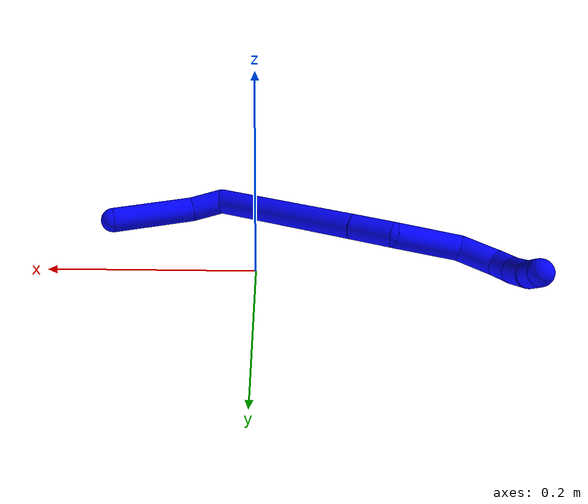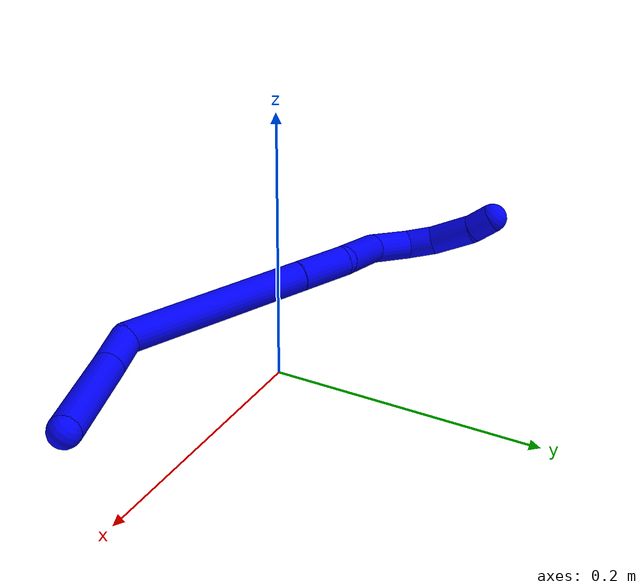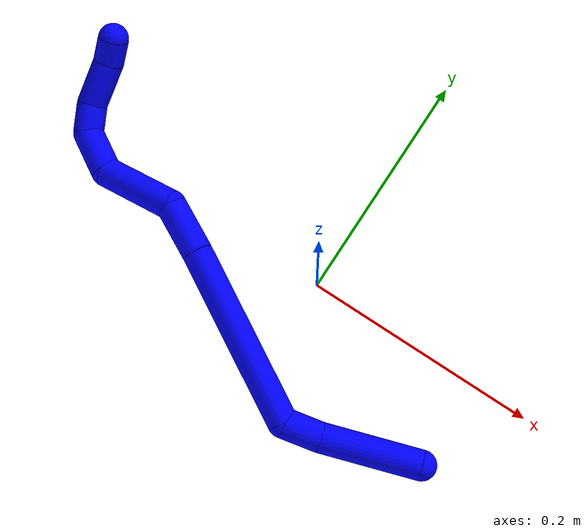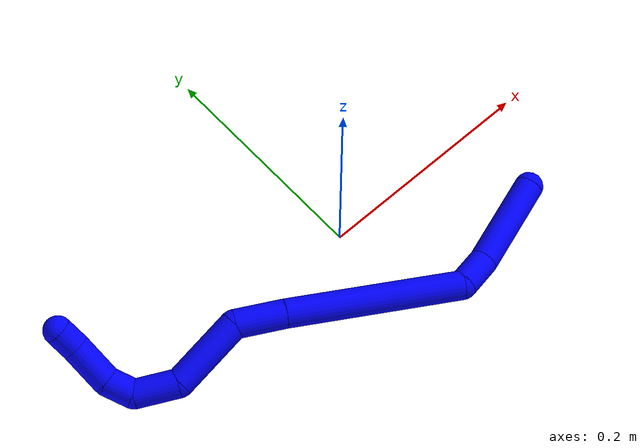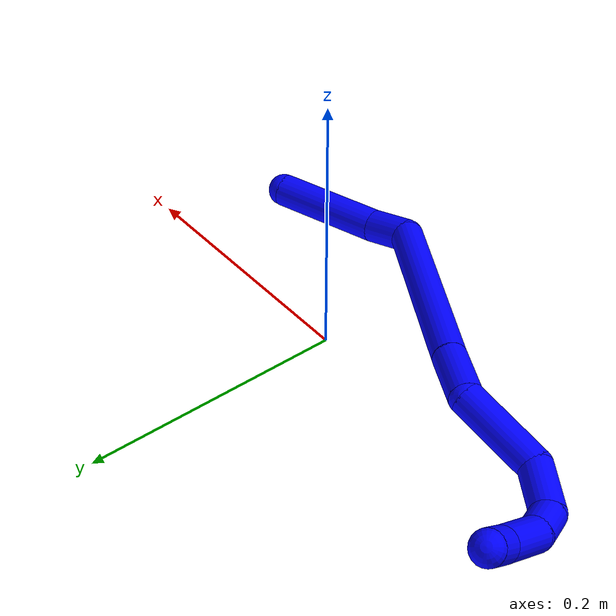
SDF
<sdf version="1.7">
 <world name="default">
  <plugin name="TubeGeneratorPlugin" filename="libtube_generator_plugin.so"/>
  <model name="photoneo_s_sensor">
   <static>1</static>
   <pose>0 0 2 1.57079 1.57079 3.14159</pose>
   <link name="link">
    <inertial><mass>0.1</mass></inertial>
    <sensor name="sensor" type="depth">
     <update_rate>30</update_rate>
     <camera>
      <horizontal_fov>1.22</horizontal_fov>
      <image><width>1920</width><height>1200</height><format>B8G8R8</format></image>
      <clip><near>0.1</near><far>4</far></clip>
      <depth_camera><output>points</output></depth_camera>
     </camera>
     <plugin name="camera_plugin" filename="libgazebo_ros_depth_camera.so">
      <baseline>0.2</baseline>
      <alwaysOn>1</alwaysOn>
      <updateRate>0.0</updateRate>
      <cameraName>camera_ir</cameraName>
      <imageTopicName>/camera/color/image_raw</imageTopicName>
      <cameraInfoTopicName>/camera/color/camera_info</cameraInfoTopicName>
      <depthImageTopicName>/camera/depth/image_raw</depthImageTopicName>
      <depthImageCameraInfoTopicName>/camera/depth/camera_info</depthImageCameraInfoTopicName>
      <pointCloudTopicName>/camera/depth/points</pointCloudTopicName>
      <frameName>fr_optical</frameName>
      <pointCloudCutoff>0.1</pointCloudCutoff>
      <pointCloudCutoffMax>2.0</pointCloudCutoffMax>
      <distortionK1>0</distortionK1>
      <distortionK2>0</distortionK2>
      <distortionK3>0</distortionK3>
      <distortionT1>0</distortionT1>
      <distortionT2>0</distortionT2>
      <CxPrime>0</CxPrime>
      <Cx>0</Cx>
      <Cy>0</Cy>
      <focalLength>0</focalLength>
      <hackBaseline>0</hackBaseline>
     </plugin>
    </sensor>
   </link>
  </model>
  <gravity>0 0 -9.8</gravity>
  <magnetic_field>6e-06 2.3e-05 -4.2e-05</magnetic_field>
  <atmosphere type="adiabatic"/>
  <physics name="default_physics" default="0" type="ode">
   <max_step_size>0.003</max_step_size>
   <real_time_factor>1</real_time_factor>
   <real_time_update_rate>1000</real_time_update_rate>
   <max_contacts>10000</max_contacts>
   <ode>
    <solver>
     <type>quick</type>
     <iters>100</iters>
     <sor>1.3</sor>
     <use_dynamic_moi_rescaling>0</use_dynamic_moi_rescaling>
    </solver>
    <constraints>
     <contact_max_correcting_vel>0</contact_max_correcting_vel>
     <contact_surface_layer>0.001</contact_surface_layer>
     <cfm>0</cfm>
     <erp>0.2</erp>
    </constraints>
   </ode>
  </physics>
  <scene><ambient>0.4 0.4 0.4 1</ambient><background>0.7 0.7 0.7 1</background><shadows>0</shadows></scene>
  <audio><device>default</device></audio>
  <spherical_coordinates>
   <surface_model>EARTH_WGS84</surface_model>
   <latitude_deg>0</latitude_deg>
   <longitude_deg>0</longitude_deg>
   <elevation>0</elevation>
   <heading_deg>0</heading_deg>
  </spherical_coordinates>
  <model name="bin">
   <static>1</static>
   <link name="bottom">
    <collision name="collision-bottom">
     <pose>0 0 -0.01 0 -0 0</pose>
     <geometry><box><size>0.8 0.6 0.02</size></box></geometry>
     <surface>
      <friction><ode><mu>100</mu><mu2>100</mu2></ode></friction>
      <contact><collide_bitmask>65535</collide_bitmask></contact>
     </surface>
    </collision>
   </link>
   <link name="west_wall">
    <collision name="collision-west_wall">
     <pose>-0.41 0 0.1 0 -0 0</pose>
     <geometry><box><size>0.02 0.6 0.2</size></box></geometry>
     <surface>
      <friction><ode><mu>100</mu><mu2>100</mu2></ode></friction>
      <contact><collide_bitmask>65535</collide_bitmask></contact>
     </surface>
    </collision>
   </link>
   <link name="east_wall">
    <collision name="collision-east_wall">
     <pose>0.41 0 0.1 0 -0 0</pose>
     <geometry><box><size>0.02 0.6 0.2</size></box></geometry>
     <surface>
      <friction><ode><mu>100</mu><mu2>100</mu2></ode></friction>
      <contact><collide_bitmask>65535</collide_bitmask></contact>
     </surface>
    </collision>
   </link>
   <link name="south_wall">
    <collision name="collision-south_wall">
     <pose>0 -0.31 0.1 0 -0 0</pose>
     <geometry><box><size>0.8 0.02 0.2</size></box></geometry>
     <surface>
      <friction><ode><mu>100</mu><mu2>100</mu2></ode></friction>
      <contact><collide_bitmask>65535</collide_bitmask></contact>
     </surface>
    </collision>
   </link>
   <link name="north_wall">
    <collision name="collision-north_wall">
     <pose>0 0.31 0.1 0 -0 0</pose>
     <geometry><box><size>0.8 0.02 0.2</size></box></geometry>
     <surface>
      <friction><ode><mu>100</mu><mu2>100</mu2></ode></friction>
      <contact><collide_bitmask>65535</collide_bitmask></contact>
     </surface>
    </collision>
   </link>
  </model>
  <model name="1">
   <static>0</static>
   <link name="1">
    <collision name="collision-cylinder-e_1_1_4">
     <pose>-0.040389 -0.007301 0.00796 0.742237 -1.30949 -0.580631</pose>
     <geometry><cylinder><radius>0.0125</radius><length>0.083617</length></cylinder></geometry>
     <surface>
      <friction><ode><mu>1.16</mu><mu2>1.16</mu2><slip1>0</slip1><slip2>0</slip2></ode></friction>
      <contact><ode><kp>1e+06</kp><kd>1</kd><max_vel>0</max_vel><min_depth>0.001</min_depth></ode></contact>
     </surface>
    </collision>
    <visual name="visual-cylinder-e_1_1_4">
     <pose>-0.040389 -0.007301 0.00796 0.742237 -1.30949 -0.580631</pose>
     <geometry><cylinder><radius>0.0125</radius><length>0.083617</length></cylinder></geometry>
     <material><ambient>0 0 1 1</ambient></material>
    </visual>
    <collision name="collision-cylinder-e_2_4_5">
     <pose>-0.095212 -0.017902 0.022386 0.47194 -1.10478 -0.294282</pose>
     <geometry><cylinder><radius>0.0125</radius><length>0.032312</length></cylinder></geometry>
     <surface>
      <friction><ode><mu>1.16</mu><mu2>1.16</mu2><slip1>0</slip1><slip2>0</slip2></ode></friction>
      <contact><ode><kp>1e+06</kp><kd>1</kd><max_vel>0</max_vel><min_depth>0.001</min_depth></ode></contact>
     </surface>
    </collision>
    <visual name="visual-cylinder-e_2_4_5">
     <pose>-0.095212 -0.017902 0.022386 0.47194 -1.10478 -0.294282</pose>
     <geometry><cylinder><radius>0.0125</radius><length>0.032312</length></cylinder></geometry>
     <material><ambient>0 0 1 1</ambient></material>
    </visual>
    <collision name="collision-cylinder-e_3_5_6">
     <pose>-0.159027 0.011189 0.077173 -0.590526 -0.703847 0.222455</pose>
     <geometry><cylinder><radius>0.0125</radius><length>0.152614</length></cylinder></geometry>
     <surface>
      <friction><ode><mu>1.16</mu><mu2>1.16</mu2><slip1>0</slip1><slip2>0</slip2></ode></friction>
      <contact><ode><kp>1e+06</kp><kd>1</kd><max_vel>0</max_vel><min_depth>0.001</min_depth></ode></contact>
     </surface>
    </collision>
    <visual name="visual-cylinder-e_3_5_6">
     <pose>-0.159027 0.011189 0.077173 -0.590526 -0.703847 0.222455</pose>
     <geometry><cylinder><radius>0.0125</radius><length>0.152614</length></cylinder></geometry>
     <material><ambient>0 0 1 1</ambient></material>
    </visual>
    <collision name="collision-cylinder-e_4_6_7">
     <pose>-0.223235 0.052572 0.13863 -0.600362 -0.74986 0.242438</pose>
     <geometry><cylinder><radius>0.0125</radius><length>0.043506</length></cylinder></geometry>
     <surface>
      <friction><ode><mu>1.16</mu><mu2>1.16</mu2><slip1>0</slip1><slip2>0</slip2></ode></friction>
      <contact><ode><kp>1e+06</kp><kd>1</kd><max_vel>0</max_vel><min_depth>0.001</min_depth></ode></contact>
     </surface>
    </collision>
    <visual name="visual-cylinder-e_4_6_7">
     <pose>-0.223235 0.052572 0.13863 -0.600362 -0.74986 0.242438</pose>
     <geometry><cylinder><radius>0.0125</radius><length>0.043506</length></cylinder></geometry>
     <material><ambient>0 0 1 1</ambient></material>
    </visual>
    <collision name="collision-cylinder-e_5_7_8">
     <pose>-0.27029 0.067052 0.156261 -0.88431 -1.35414 0.727248</pose>
     <geometry><cylinder><radius>0.0125</radius><length>0.066001</length></cylinder></geometry>
     <surface>
      <friction><ode><mu>1.16</mu><mu2>1.16</mu2><slip1>0</slip1><slip2>0</slip2></ode></friction>
      <contact><ode><kp>1e+06</kp><kd>1</kd><max_vel>0</max_vel><min_depth>0.001</min_depth></ode></contact>
     </surface>
    </collision>
    <visual name="visual-cylinder-e_5_7_8">
     <pose>-0.27029 0.067052 0.156261 -0.88431 -1.35414 0.727248</pose>
     <geometry><cylinder><radius>0.0125</radius><length>0.066001</length></cylinder></geometry>
     <material><ambient>0 0 1 1</ambient></material>
    </visual>
    <collision name="collision-cylinder-e_6_8_9">
     <pose>-0.315771 0.083166 0.16976 -0.86797 -0.760539 0.366354</pose>
     <geometry><cylinder><radius>0.0125</radius><length>0.038449</length></cylinder></geometry>
     <surface>
      <friction><ode><mu>1.16</mu><mu2>1.16</mu2><slip1>0</slip1><slip2>0</slip2></ode></friction>
      <contact><ode><kp>1e+06</kp><kd>1</kd><max_vel>0</max_vel><min_depth>0.001</min_depth></ode></contact>
     </surface>
    </collision>
    <visual name="visual-cylinder-e_6_8_9">
     <pose>-0.315771 0.083166 0.16976 -0.86797 -0.760539 0.366354</pose>
     <geometry><cylinder><radius>0.0125</radius><length>0.038449</length></cylinder></geometry>
     <material><ambient>0 0 1 1</ambient></material>
    </visual>
    <collision name="collision-cylinder-e_7_9_10">
     <pose>-0.330126 0.101552 0.188201 -0.688024 -0.09009 0.032294</pose>
     <geometry><cylinder><radius>0.0125</radius><length>0.024536</length></cylinder></geometry>
     <surface>
      <friction><ode><mu>1.16</mu><mu2>1.16</mu2><slip1>0</slip1><slip2>0</slip2></ode></friction>
      <contact><ode><kp>1e+06</kp><kd>1</kd><max_vel>0</max_vel><min_depth>0.001</min_depth></ode></contact>
     </surface>
    </collision>
    <visual name="visual-cylinder-e_7_9_10">
     <pose>-0.330126 0.101552 0.188201 -0.688024 -0.09009 0.032294</pose>
     <geometry><cylinder><radius>0.0125</radius><length>0.024536</length></cylinder></geometry>
     <material><ambient>0 0 1 1</ambient></material>
    </visual>
    <collision name="collision-cylinder-e_8_10_11">
     <pose>-0.326085 0.118397 0.213618 -0.517063 0.272917 -0.072592</pose>
     <geometry><cylinder><radius>0.0125</radius><length>0.038177</length></cylinder></geometry>
     <surface>
      <friction><ode><mu>1.16</mu><mu2>1.16</mu2><slip1>0</slip1><slip2>0</slip2></ode></friction>
      <contact><ode><kp>1e+06</kp><kd>1</kd><max_vel>0</max_vel><min_depth>0.001</min_depth></ode></contact>
     </surface>
    </collision>
    <visual name="visual-cylinder-e_8_10_11">
     <pose>-0.326085 0.118397 0.213618 -0.517063 0.272917 -0.072592</pose>
     <geometry><cylinder><radius>0.0125</radius><length>0.038177</length></cylinder></geometry>
     <material><ambient>0 0 1 1</ambient></material>
    </visual>
    <collision name="collision-cylinder-e_9_11_2">
     <pose>-0.318995 0.130709 0.239285 -0.321318 0.188247 -0.030594</pose>
     <geometry><cylinder><radius>0.0125</radius><length>0.020788</length></cylinder></geometry>
     <surface>
      <friction><ode><mu>1.16</mu><mu2>1.16</mu2><slip1>0</slip1><slip2>0</slip2></ode></friction>
      <contact><ode><kp>1e+06</kp><kd>1</kd><max_vel>0</max_vel><min_depth>0.001</min_depth></ode></contact>
     </surface>
    </collision>
    <visual name="visual-cylinder-e_9_11_2">
     <pose>-0.318995 0.130709 0.239285 -0.321318 0.188247 -0.030594</pose>
     <geometry><cylinder><radius>0.0125</radius><length>0.020788</length></cylinder></geometry>
     <material><ambient>0 0 1 1</ambient></material>
    </visual>
    <collision name="collision-sphere-2">
     <pose>-0.31705 0.133933 0.248972 0 -0 0</pose>
     <geometry><sphere><radius>0.0125</radius></sphere></geometry>
     <surface>
      <friction><ode><mu>1.16</mu><mu2>1.16</mu2><slip1>0</slip1><slip2>0</slip2></ode></friction>
      <contact><ode><kp>1e+06</kp><kd>1</kd><max_vel>0</max_vel><min_depth>0.001</min_depth></ode></contact>
     </surface>
    </collision>
    <visual name="visual-sphere-2">
     <pose>-0.31705 0.133933 0.248972 0 -0 0</pose>
     <geometry><sphere><radius>0.0125</radius></sphere></geometry>
     <material><ambient>0 0 1 1</ambient></material>
    </visual>
    <collision name="collision-sphere-11">
     <pose>-0.32094 0.127484 0.229597 0 -0 0</pose>
     <geometry><sphere><radius>0.0125</radius></sphere></geometry>
     <surface>
      <friction><ode><mu>1.16</mu><mu2>1.16</mu2><slip1>0</slip1><slip2>0</slip2></ode></friction>
      <contact><ode><kp>1e+06</kp><kd>1</kd><max_vel>0</max_vel><min_depth>0.001</min_depth></ode></contact>
     </surface>
    </collision>
    <visual name="visual-sphere-11">
     <pose>-0.32094 0.127484 0.229597 0 -0 0</pose>
     <geometry><sphere><radius>0.0125</radius></sphere></geometry>
     <material><ambient>0 0 1 1</ambient></material>
    </visual>
    <collision name="collision-sphere-10">
     <pose>-0.33123 0.109311 0.197639 0 -0 0</pose>
     <geometry><sphere><radius>0.0125</radius></sphere></geometry>
     <surface>
      <friction><ode><mu>1.16</mu><mu2>1.16</mu2><slip1>0</slip1><slip2>0</slip2></ode></friction>
      <contact><ode><kp>1e+06</kp><kd>1</kd><max_vel>0</max_vel><min_depth>0.001</min_depth></ode></contact>
     </surface>
    </collision>
    <visual name="visual-sphere-10">
     <pose>-0.33123 0.109311 0.197639 0 -0 0</pose>
     <geometry><sphere><radius>0.0125</radius></sphere></geometry>
     <material><ambient>0 0 1 1</ambient></material>
    </visual>
    <collision name="collision-sphere-9">
     <pose>-0.329022 0.093793 0.178762 0 -0 0</pose>
     <geometry><sphere><radius>0.0125</radius></sphere></geometry>
     <surface>
      <friction><ode><mu>1.16</mu><mu2>1.16</mu2><slip1>0</slip1><slip2>0</slip2></ode></friction>
      <contact><ode><kp>1e+06</kp><kd>1</kd><max_vel>0</max_vel><min_depth>0.001</min_depth></ode></contact>
     </surface>
    </collision>
    <visual name="visual-sphere-9">
     <pose>-0.329022 0.093793 0.178762 0 -0 0</pose>
     <geometry><sphere><radius>0.0125</radius></sphere></geometry>
     <material><ambient>0 0 1 1</ambient></material>
    </visual>
    <collision name="collision-sphere-4">
     <pose>-0.080778 -0.014602 0.01592 0 -0 0</pose>
     <geometry><sphere><radius>0.0125</radius></sphere></geometry>
     <surface>
      <friction><ode><mu>1.16</mu><mu2>1.16</mu2><slip1>0</slip1><slip2>0</slip2></ode></friction>
      <contact><ode><kp>1e+06</kp><kd>1</kd><max_vel>0</max_vel><min_depth>0.001</min_depth></ode></contact>
     </surface>
    </collision>
    <visual name="visual-sphere-4">
     <pose>-0.080778 -0.014602 0.01592 0 -0 0</pose>
     <geometry><sphere><radius>0.0125</radius></sphere></geometry>
     <material><ambient>0 0 1 1</ambient></material>
    </visual>
    <collision name="collision-sphere-1">
     <geometry><sphere><radius>0.0125</radius></sphere></geometry>
     <surface>
      <friction><ode><mu>1.16</mu><mu2>1.16</mu2><slip1>0</slip1><slip2>0</slip2></ode></friction>
      <contact><ode><kp>1e+06</kp><kd>1</kd><max_vel>0</max_vel><min_depth>0.001</min_depth></ode></contact>
     </surface>
    </collision>
    <visual name="visual-sphere-1">
     <geometry><sphere><radius>0.0125</radius></sphere></geometry>
     <material><ambient>0 0 1 1</ambient></material>
    </visual>
    <collision name="collision-sphere-8">
     <pose>-0.302519 0.072539 0.160757 0 -0 0</pose>
     <geometry><sphere><radius>0.0125</radius></sphere></geometry>
     <surface>
      <friction><ode><mu>1.16</mu><mu2>1.16</mu2><slip1>0</slip1><slip2>0</slip2></ode></friction>
      <contact><ode><kp>1e+06</kp><kd>1</kd><max_vel>0</max_vel><min_depth>0.001</min_depth></ode></contact>
     </surface>
    </collision>
    <visual name="visual-sphere-8">
     <pose>-0.302519 0.072539 0.160757 0 -0 0</pose>
     <geometry><sphere><radius>0.0125</radius></sphere></geometry>
     <material><ambient>0 0 1 1</ambient></material>
    </visual>
    <collision name="collision-sphere-5">
     <pose>-0.109645 -0.021202 0.028852 0 -0 0</pose>
     <geometry><sphere><radius>0.0125</radius></sphere></geometry>
     <surface>
      <friction><ode><mu>1.16</mu><mu2>1.16</mu2><slip1>0</slip1><slip2>0</slip2></ode></friction>
      <contact><ode><kp>1e+06</kp><kd>1</kd><max_vel>0</max_vel><min_depth>0.001</min_depth></ode></contact>
     </surface>
    </collision>
    <visual name="visual-sphere-5">
     <pose>-0.109645 -0.021202 0.028852 0 -0 0</pose>
     <geometry><sphere><radius>0.0125</radius></sphere></geometry>
     <material><ambient>0 0 1 1</ambient></material>
    </visual>
    <collision name="collision-sphere-6">
     <pose>-0.20841 0.043579 0.125495 0 -0 0</pose>
     <geometry><sphere><radius>0.0125</radius></sphere></geometry>
     <surface>
      <friction><ode><mu>1.16</mu><mu2>1.16</mu2><slip1>0</slip1><slip2>0</slip2></ode></friction>
      <contact><ode><kp>1e+06</kp><kd>1</kd><max_vel>0</max_vel><min_depth>0.001</min_depth></ode></contact>
     </surface>
    </collision>
    <visual name="visual-sphere-6">
     <pose>-0.20841 0.043579 0.125495 0 -0 0</pose>
     <geometry><sphere><radius>0.0125</radius></sphere></geometry>
     <material><ambient>0 0 1 1</ambient></material>
    </visual>
    <collision name="collision-sphere-7">
     <pose>-0.238061 0.061565 0.151765 0 -0 0</pose>
     <geometry><sphere><radius>0.0125</radius></sphere></geometry>
     <surface>
      <friction><ode><mu>1.16</mu><mu2>1.16</mu2><slip1>0</slip1><slip2>0</slip2></ode></friction>
      <contact><ode><kp>1e+06</kp><kd>1</kd><max_vel>0</max_vel><min_depth>0.001</min_depth></ode></contact>
     </surface>
    </collision>
    <visual name="visual-sphere-7">
     <pose>-0.238061 0.061565 0.151765 0 -0 0</pose>
     <geometry><sphere><radius>0.0125</radius></sphere></geometry>
     <material><ambient>0 0 1 1</ambient></material>
    </visual>
    <inertial>
     <pose>-0.195192 0.040316 0.107571 0 -0 0</pose>
     <mass>0.5</mass>
     <inertia>
      <ixx>0.000286</ixx>
      <ixy>0</ixy>
      <ixz>0</ixz>
      <iyy>0.00043</iyy>
      <iyz>0</iyz>
      <izz>0.000169</izz>
     </inertia>
    </inertial>
   </link>
   <pose>0.149469 -0.077363 0.01243 -0.640191 -0.259583 0.285435</pose>
  </model>
 </world>
</sdf>
